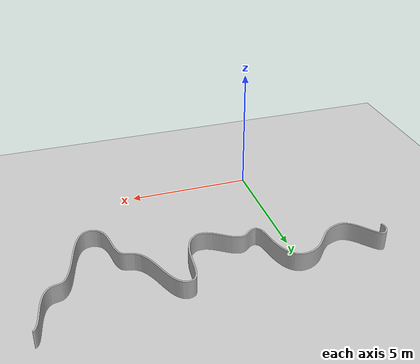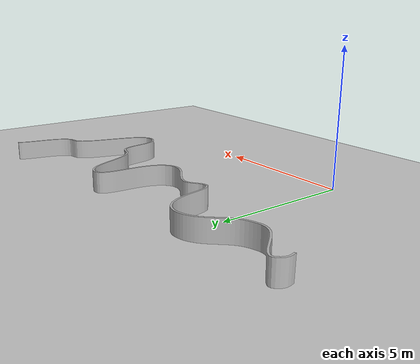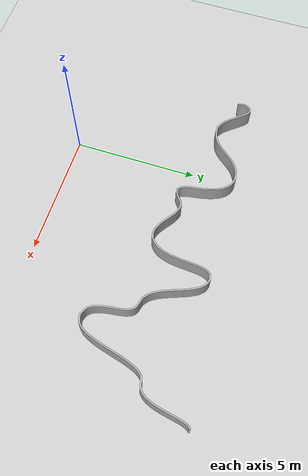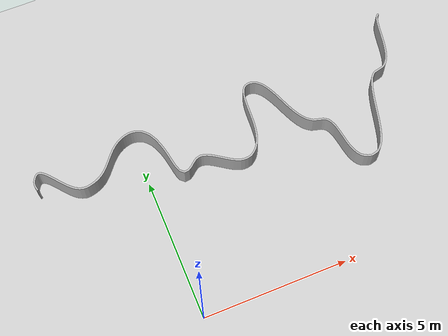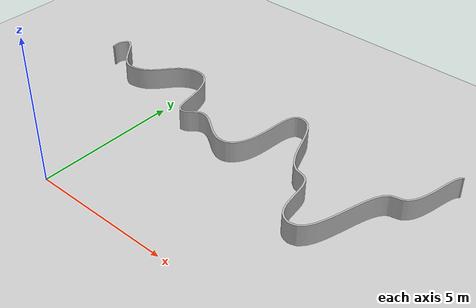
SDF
<sdf version="1.6">
 <world name="default">
  <model name="ground_plane">
   <static>1</static>
   <link name="link">
    <collision name="collision">
     <geometry><plane><normal>0 0 1</normal><size>100 100</size></plane></geometry>
     <surface>
      <contact><collide_bitmask>65535</collide_bitmask></contact>
      <friction><ode><mu>100</mu><mu2>50</mu2></ode></friction>
     </surface>
    </collision>
    <visual name="visual">
     <cast_shadows>0</cast_shadows>
     <geometry><plane><normal>0 0 1</normal><size>100 100</size></plane></geometry>
     <material>
      <script><uri>file://media/materials/scripts/gazebo.material</uri><name>Gazebo/Grey</name></script>
     </material>
    </visual>
   </link>
  </model>
  <model name="blender_wall">
   <static>true</static>
   <link name="body">
    <collision name="collision">
     <geometry><mesh><uri>model://walls/curved_wall_purple.stl</uri></mesh></geometry>
    </collision>
    <visual name="visual">
     <geometry><mesh><uri>model://walls/curved_wall_purple.stl</uri><scale>1.0 1.0 1.0</scale></mesh></geometry>
    </visual>
    <inertial>
     <mass>1</mass>
     <inertia><ixx>0.145833</ixx><ixy>0</ixy><ixz>0</ixz><iyy>0.145833</iyy><iyz>0</iyz><izz>0.125</izz></inertia>
    </inertial>
   </link>
  </model>
  <light name="sun" type="directional">
   <pose>0 0 10 0 -0 0</pose>
   <diffuse>0.8 0.8 0.8 1</diffuse>
   <specular>0.2 0.2 0.2 1</specular>
   <attenuation>
    <range>1000</range>
    <constant>0.9</constant>
    <linear>0.01</linear>
    <quadratic>0.001</quadratic>
   </attenuation>
   <direction>-0.5 0.1 -0.9</direction>
  </light>
 </world>
</sdf>
